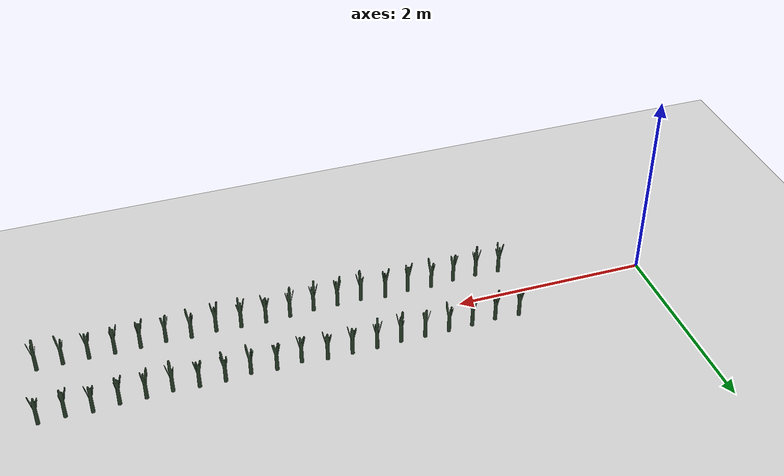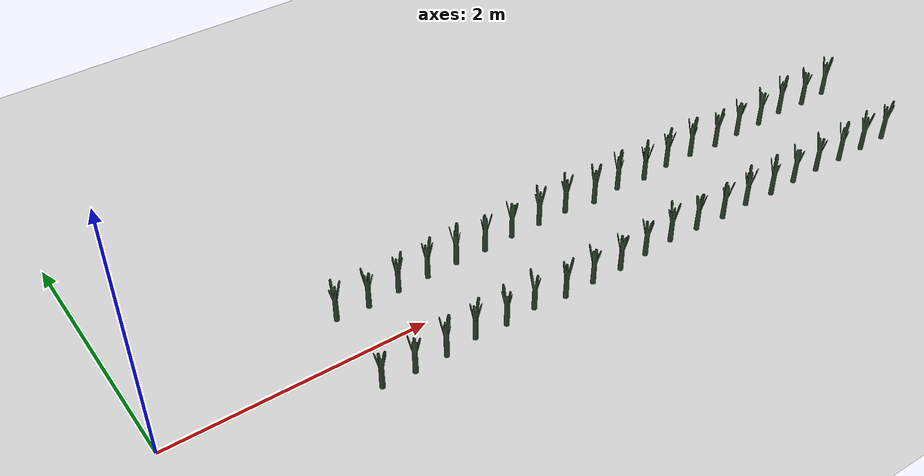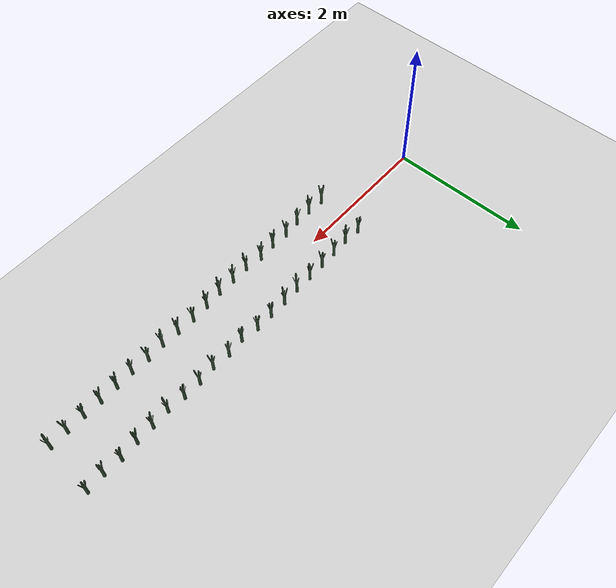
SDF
<sdf version="1.6">
 <world name="default">
  <light name="sun" type="directional">
   <pose>0 0 10 0 -0 0</pose>
   <diffuse>0.5 0.5 0.5 1</diffuse>
   <specular>0.1 0.1 0.1 1</specular>
   <attenuation>
    <range>1000</range>
    <constant>0.9</constant>
    <linear>0.01</linear>
    <quadratic>0.001</quadratic>
   </attenuation>
   <direction>0.9 0.5 -1</direction>
  </light>
  <scene><background>130 200 255 1</background><ambient>130 140 140 1</ambient></scene>
  <include><uri>model://dirt_plane</uri></include>
  <include><uri>model://Leek</uri><pose>1.500000 0.354876 0.15 0 0 43.885550</pose><static>0</static></include>
  <include><uri>model://Leek</uri><pose>1.750000 0.339074 0.15 0 0 -98.333435</pose><static>0</static></include>
  <include><uri>model://Leek</uri><pose>2.000000 0.351260 0.15 0 0 11.338643</pose><static>0</static></include>
  <include><uri>model://Leek</uri><pose>2.250000 0.357558 0.15 0 0 68.020462</pose><static>0</static></include>
  <include><uri>model://Leek</uri><pose>2.500000 0.361267 0.15 0 0 101.404119</pose><static>0</static></include>
  <include><uri>model://Leek</uri><pose>2.750000 0.358135 0.15 0 0 73.215045</pose><static>0</static></include>
  <include><uri>model://Leek</uri><pose>3.000000 0.369848 0.15 0 0 178.628281</pose><static>0</static></include>
  <include><uri>model://Leek</uri><pose>3.250000 0.367437 0.15 0 0 156.936383</pose><static>0</static></include>
  <include><uri>model://Leek</uri><pose>3.500000 0.369513 0.15 0 0 175.612523</pose><static>0</static></include>
  <include>
   <uri>model://Leek</uri>
   <pose>3.750000 0.331161 0.15 0 0 -169.547094</pose>
   <static>0</static>
  </include>
  <include><uri>model://Leek</uri><pose>4.000000 0.357043 0.15 0 0 63.389915</pose><static>0</static></include>
  <include>
   <uri>model://Leek</uri>
   <pose>4.250000 0.332449 0.15 0 0 -157.959253</pose>
   <static>0</static>
  </include>
  <include><uri>model://Leek</uri><pose>4.500000 0.357562 0.15 0 0 68.061729</pose><static>0</static></include>
  <include><uri>model://Leek</uri><pose>4.750000 0.352836 0.15 0 0 25.525985</pose><static>0</static></include>
  <include>
   <uri>model://Leek</uri>
   <pose>5.000000 0.330983 0.15 0 0 -171.153875</pose>
   <static>0</static>
  </include>
  <include><uri>model://Leek</uri><pose>5.250000 0.344673 0.15 0 0 -47.947257</pose><static>0</static></include>
  <include><uri>model://Leek</uri><pose>5.500000 0.346014 0.15 0 0 -35.872326</pose><static>0</static></include>
  <include><uri>model://Leek</uri><pose>5.750000 0.366782 0.15 0 0 151.037093</pose><static>0</static></include>
  <include><uri>model://Leek</uri><pose>6.000000 0.348110 0.15 0 0 -17.013432</pose><static>0</static></include>
  <include><uri>model://Leek</uri><pose>6.250000 0.359072 0.15 0 0 81.646971</pose><static>0</static></include>
  <include><uri>model://Leek</uri><pose>1.437615 -0.350352 0.15 0 0 -3.166928</pose><static>0</static></include>
  <include>
   <uri>model://Leek</uri>
   <pose>1.687615 -0.361583 0.15 0 0 -104.243084</pose>
   <static>0</static>
  </include>
  <include>
   <uri>model://Leek</uri>
   <pose>1.937615 -0.358315 0.15 0 0 -74.834276</pose>
   <static>0</static>
  </include>
  <include>
   <uri>model://Leek</uri>
   <pose>2.187615 -0.334065 0.15 0 0 143.414752</pose>
   <static>0</static>
  </include>
  <include><uri>model://Leek</uri><pose>2.437615 -0.349116 0.15 0 0 7.956941</pose><static>0</static></include>
  <include>
   <uri>model://Leek</uri>
   <pose>2.687615 -0.330246 0.15 0 0 177.786016</pose>
   <static>0</static>
  </include>
  <include>
   <uri>model://Leek</uri>
   <pose>2.937615 -0.364840 0.15 0 0 -133.563052</pose>
   <static>0</static>
  </include>
  <include>
   <uri>model://Leek</uri>
   <pose>3.187615 -0.358833 0.15 0 0 -79.496819</pose>
   <static>0</static>
  </include>
  <include>
   <uri>model://Leek</uri>
   <pose>3.437615 -0.360873 0.15 0 0 -97.858815</pose>
   <static>0</static>
  </include>
  <include><uri>model://Leek</uri><pose>3.687615 -0.342016 0.15 0 0 71.851814</pose><static>0</static></include>
  <include>
   <uri>model://Leek</uri>
   <pose>3.937615 -0.331893 0.15 0 0 162.963848</pose>
   <static>0</static>
  </include>
  <include><uri>model://Leek</uri><pose>4.187615 -0.343351 0.15 0 0 59.843402</pose><static>0</static></include>
  <include>
   <uri>model://Leek</uri>
   <pose>4.437615 -0.358641 0.15 0 0 -77.765175</pose>
   <static>0</static>
  </include>
  <include><uri>model://Leek</uri><pose>4.687615 -0.345902 0.15 0 0 36.882350</pose><static>0</static></include>
  <include>
   <uri>model://Leek</uri>
   <pose>4.937615 -0.365265 0.15 0 0 -137.384719</pose>
   <static>0</static>
  </include>
  <include>
   <uri>model://Leek</uri>
   <pose>5.187615 -0.355366 0.15 0 0 -48.297804</pose>
   <static>0</static>
  </include>
  <include>
   <uri>model://Leek</uri>
   <pose>5.437615 -0.354691 0.15 0 0 -42.220853</pose>
   <static>0</static>
  </include>
  <include>
   <uri>model://Leek</uri>
   <pose>5.687615 -0.363226 0.15 0 0 -119.031954</pose>
   <static>0</static>
  </include>
  <include>
   <uri>model://Leek</uri>
   <pose>5.937615 -0.363333 0.15 0 0 -119.997827</pose>
   <static>0</static>
  </include>
  <include>
   <uri>model://Leek</uri>
   <pose>6.187615 -0.357862 0.15 0 0 -70.762451</pose>
   <static>0</static>
  </include>
 </world>
</sdf>

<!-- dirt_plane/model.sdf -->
<sdf version="1.4">
<model name="dirt_plane">
  <static>true</static>
    <link name="link">
      <collision name="collision">
        <geometry>
          <plane>
            <normal>0 0 1</normal>
            <size>100 100</size>
          </plane>
        </geometry>
        <surface>
          <friction>
            <ode>
              <mu>100</mu>
              <mu2>50</mu2>
            </ode>
          </friction>
        </surface>
      </collision>
      <visual name="visual">
        <cast_shadows>false</cast_shadows>
        <geometry>
          <plane>
            <normal>0 0 1</normal>
            <size>100 100</size>
          </plane>
        </geometry>
        <material>
          <script>
            <uri>model://ground_plane/materials/scripts/my_ground_plane.material</uri>
            <uri>model://ground_plane/materials/textures</uri>
            <name>my_ground_plane/Dirt</name>
          </script>
        </material>
      </visual>
    </link>
  </model>
</sdf>

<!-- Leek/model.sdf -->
<sdf version='1.6'>
  <model name='Leek'>
    <link name='link'>
      <pose frame=''>0 0 0 0 -0 0</pose>
      <inertial>
        <mass>1</mass>
        <inertia>
          <ixx>0.145833</ixx>
          <ixy>0</ixy>
          <ixz>0</ixz>
          <iyy>0.145833</iyy>
          <iyz>0</iyz>
          <izz>0.125</izz>
        </inertia>
        <pose frame=''>0 0 0 0 -0 0</pose>
      </inertial>
      <self_collide>0</self_collide>
      <kinematic>0</kinematic>
      <gravity>1</gravity>
      <visual name='visual'>
        <geometry>
          <mesh>
            <uri>model://Leek/Poireau.dae</uri>
            <scale>1 1 1</scale>
          </mesh>
        </geometry>
        <material>
          <script>
            <name>Gazebo/Grey</name>
            <uri>file://media/materials/scripts/gazebo.material</uri>
          </script>
          <ambient>0.3 0.7 0.4 0</ambient>
          <diffuse>0.2 0.3 0.2 0</diffuse>
          <specular>0 0 0 1</specular>
          <emissive>0 0 0 1</emissive>
          <shader type='vertex'>
            <normal_map>__default__</normal_map>
          </shader>
        </material>
        <pose frame=''>0 0 -0.08 0 -0 0</pose>
        <cast_shadows>1</cast_shadows>
        <transparency>0</transparency>
      </visual>
      <collision name='collision'>
        <laser_retro>0</laser_retro>
        <max_contacts>10</max_contacts>
        <pose frame=''>0 0 0 0 -0 0</pose>
        <geometry>
          <cylinder>
            <radius>0.02</radius>
            <length>0.25</length>
          </cylinder>
        </geometry>
        <surface>
          <friction>
            <ode>
              <mu>1</mu>
              <mu2>1</mu2>
              <fdir1>0 0 0</fdir1>
              <slip1>0</slip1>
              <slip2>0</slip2>
            </ode>
            <torsional>
              <coefficient>1</coefficient>
              <patch_radius>0</patch_radius>
              <surface_radius>0</surface_radius>
              <use_patch_radius>1</use_patch_radius>
              <ode>
                <slip>0</slip>
              </ode>
            </torsional>
          </friction>
          <bounce>
            <restitution_coefficient>0</restitution_coefficient>
            <threshold>1e+06</threshold>
          </bounce>
          <contact>
            <collide_without_contact>0</collide_without_contact>
            <collide_without_contact_bitmask>1</collide_without_contact_bitmask>
            <collide_bitmask>1</collide_bitmask>
            <ode>
              <soft_cfm>0</soft_cfm>
              <soft_erp>0.2</soft_erp>
              <kp>1e+13</kp>
              <kd>1</kd>
              <max_vel>0.01</max_vel>
              <min_depth>0</min_depth>
            </ode>
            <bullet>
              <split_impulse>1</split_impulse>
              <split_impulse_penetration_threshold>-0.01</split_impulse_penetration_threshold>
              <soft_cfm>0</soft_cfm>
              <soft_erp>0.2</soft_erp>
              <kp>1e+13</kp>
              <kd>1</kd>
            </bullet>
          </contact>
        </surface>
      </collision>
    </link>
    <static>0</static>
    <allow_auto_disable>1</allow_auto_disable>
  </model>
</sdf>
